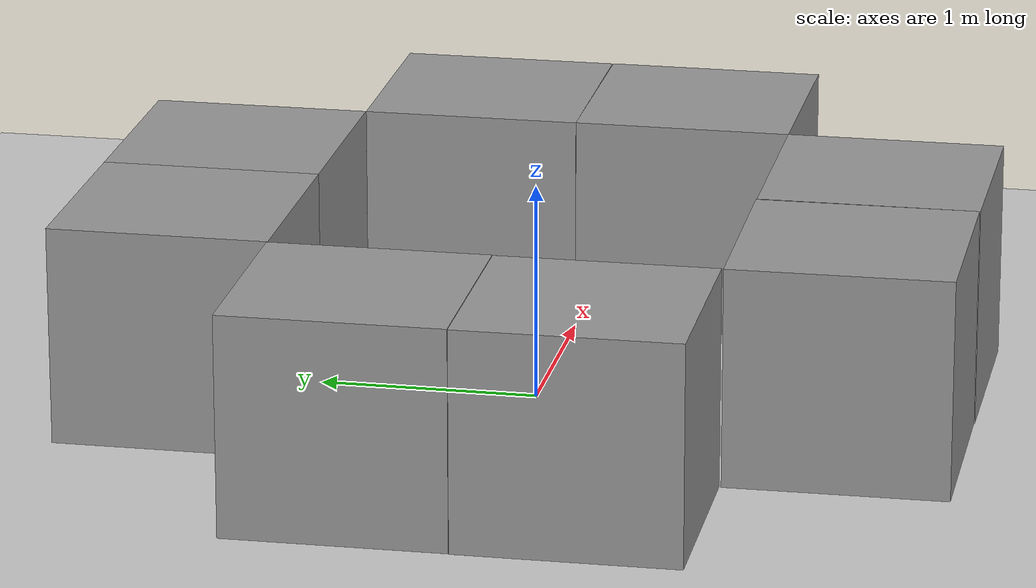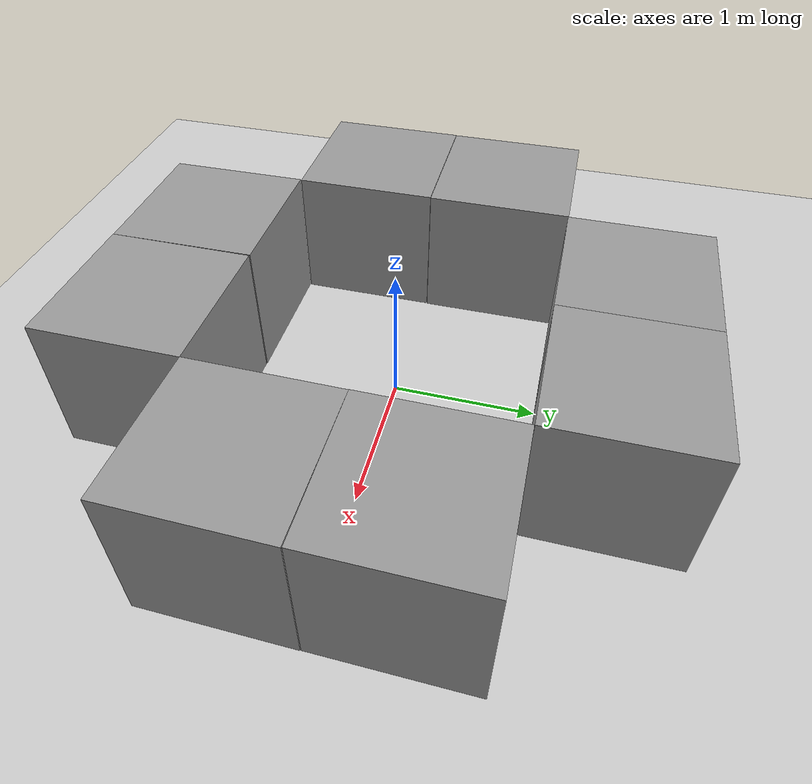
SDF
<sdf version="1.6">
 <world name="default">
  <light name="sun" type="directional">
   <pose>0 0 10 0 -0 0</pose>
   <diffuse>0.8 0.8 0.8 1</diffuse>
   <specular>0.2 0.2 0.2 1</specular>
   <attenuation>
    <range>1000</range>
    <constant>0.9</constant>
    <linear>0.01</linear>
    <quadratic>0.001</quadratic>
   </attenuation>
   <direction>-0.5 0.1 -0.9</direction>
  </light>
  <model name="ground_plane">
   <static>1</static>
   <link name="link">
    <collision name="collision">
     <geometry><plane><normal>0 0 1</normal><size>100 100</size></plane></geometry>
     <surface>
      <contact><collide_bitmask>65535</collide_bitmask></contact>
      <friction><ode><mu>100</mu><mu2>50</mu2></ode></friction>
     </surface>
    </collision>
    <visual name="visual">
     <cast_shadows>0</cast_shadows>
     <geometry><plane><normal>0 0 1</normal><size>100 100</size></plane></geometry>
     <material>
      <script><uri>file://media/materials/scripts/gazebo.material</uri><name>Gazebo/Grey</name></script>
     </material>
    </visual>
   </link>
  </model>
  <gravity>0 0 -9.8</gravity>
  <magnetic_field>6e-06 2.3e-05 -4.2e-05</magnetic_field>
  <atmosphere type="adiabatic"/>
  <physics name="default_physics" default="0" type="ode">
   <max_step_size>0.001</max_step_size>
   <real_time_factor>1</real_time_factor>
   <real_time_update_rate>1000</real_time_update_rate>
  </physics>
  <scene><ambient>0.4 0.4 0.4 1</ambient><background>0.7 0.7 0.7 1</background><shadows>1</shadows></scene>
  <audio><device>default</device></audio>
  <spherical_coordinates>
   <surface_model>EARTH_WGS84</surface_model>
   <latitude_deg>0</latitude_deg>
   <longitude_deg>0</longitude_deg>
   <elevation>0</elevation>
   <heading_deg>0</heading_deg>
  </spherical_coordinates>
  <model name="unit_box">
   <pose>-0.498776 1.50256 0.499995 1e-05 -0 -0.000189</pose>
   <link name="link">
    <inertial>
     <mass>1</mass>
     <inertia>
      <ixx>0.166667</ixx>
      <ixy>0</ixy>
      <ixz>0</ixz>
      <iyy>0.166667</iyy>
      <iyz>0</iyz>
      <izz>0.166667</izz>
     </inertia>
    </inertial>
    <collision name="collision"><geometry><box><size>1 1 1</size></box></geometry></collision>
    <visual name="visual">
     <geometry><box><size>1 1 1</size></box></geometry>
     <material>
      <script><name>Gazebo/Grey</name><uri>file://media/materials/scripts/gazebo.material</uri></script>
     </material>
    </visual>
   </link>
  </model>
  <model name="unit_box_0">
   <pose>-1.50053 0.505425 0.499995 -0 -1e-05 0.00335</pose>
   <link name="link">
    <inertial>
     <mass>1</mass>
     <inertia>
      <ixx>0.166667</ixx>
      <ixy>0</ixy>
      <ixz>0</ixz>
      <iyy>0.166667</iyy>
      <iyz>0</iyz>
      <izz>0.166667</izz>
     </inertia>
    </inertial>
    <collision name="collision"><geometry><box><size>1 1 1</size></box></geometry></collision>
    <visual name="visual">
     <geometry><box><size>1 1 1</size></box></geometry>
     <material>
      <script><name>Gazebo/Grey</name><uri>file://media/materials/scripts/gazebo.material</uri></script>
     </material>
    </visual>
   </link>
  </model>
  <model name="unit_box_1">
   <pose>-1.50158 -0.497352 0.499995 0 1e-05 0.003059</pose>
   <link name="link">
    <inertial>
     <mass>1</mass>
     <inertia>
      <ixx>0.166667</ixx>
      <ixy>0</ixy>
      <ixz>0</ixz>
      <iyy>0.166667</iyy>
      <iyz>0</iyz>
      <izz>0.166667</izz>
     </inertia>
    </inertial>
    <collision name="collision"><geometry><box><size>1 1 1</size></box></geometry></collision>
    <visual name="visual">
     <geometry><box><size>1 1 1</size></box></geometry>
     <material>
      <script><name>Gazebo/Grey</name><uri>file://media/materials/scripts/gazebo.material</uri></script>
     </material>
    </visual>
   </link>
  </model>
  <model name="unit_box_2">
   <pose>-0.503093 -1.50021 0.499995 1e-05 0 0.007055</pose>
   <link name="link">
    <inertial>
     <mass>1</mass>
     <inertia>
      <ixx>0.166667</ixx>
      <ixy>0</ixy>
      <ixz>0</ixz>
      <iyy>0.166667</iyy>
      <iyz>0</iyz>
      <izz>0.166667</izz>
     </inertia>
    </inertial>
    <collision name="collision"><geometry><box><size>1 1 1</size></box></geometry></collision>
    <visual name="visual">
     <geometry><box><size>1 1 1</size></box></geometry>
     <material>
      <script><name>Gazebo/Grey</name><uri>file://media/materials/scripts/gazebo.material</uri></script>
     </material>
    </visual>
   </link>
  </model>
  <model name="unit_box_3">
   <pose>0.500186 -1.5 0.499995 1e-05 -0 0.000508</pose>
   <link name="link">
    <inertial>
     <mass>1</mass>
     <inertia>
      <ixx>0.166667</ixx>
      <ixy>0</ixy>
      <ixz>0</ixz>
      <iyy>0.166667</iyy>
      <iyz>0</iyz>
      <izz>0.166667</izz>
     </inertia>
    </inertial>
    <collision name="collision"><geometry><box><size>1 1 1</size></box></geometry></collision>
    <visual name="visual">
     <geometry><box><size>1 1 1</size></box></geometry>
     <material>
      <script><name>Gazebo/Grey</name><uri>file://media/materials/scripts/gazebo.material</uri></script>
     </material>
    </visual>
   </link>
  </model>
  <model name="unit_box_4">
   <pose>1.49995 -0.50191 0.499995 -0 1e-05 -0.004579</pose>
   <link name="link">
    <inertial>
     <mass>1</mass>
     <inertia>
      <ixx>0.166667</ixx>
      <ixy>0</ixy>
      <ixz>0</ixz>
      <iyy>0.166667</iyy>
      <iyz>0</iyz>
      <izz>0.166667</izz>
     </inertia>
    </inertial>
    <collision name="collision"><geometry><box><size>1 1 1</size></box></geometry></collision>
    <visual name="visual">
     <geometry><box><size>1 1 1</size></box></geometry>
     <material>
      <script><name>Gazebo/Grey</name><uri>file://media/materials/scripts/gazebo.material</uri></script>
     </material>
    </visual>
   </link>
  </model>
  <model name="unit_box_5">
   <pose>1.49998 0.500151 0.5 0 0 -0.000449</pose>
   <link name="link">
    <inertial>
     <mass>1</mass>
     <inertia>
      <ixx>0.166667</ixx>
      <ixy>0</ixy>
      <ixz>0</ixz>
      <iyy>0.166667</iyy>
      <iyz>0</iyz>
      <izz>0.166667</izz>
     </inertia>
    </inertial>
    <collision name="collision"><geometry><box><size>1 1 1</size></box></geometry></collision>
    <visual name="visual">
     <geometry><box><size>1 1 1</size></box></geometry>
     <material>
      <script><name>Gazebo/Grey</name><uri>file://media/materials/scripts/gazebo.material</uri></script>
     </material>
    </visual>
   </link>
  </model>
  <model name="unit_box_6">
   <pose>0.501229 1.5025 0.499995 1e-05 -0 -0.000189</pose>
   <link name="link">
    <inertial>
     <mass>1</mass>
     <inertia>
      <ixx>0.166667</ixx>
      <ixy>0</ixy>
      <ixz>0</ixz>
      <iyy>0.166667</iyy>
      <iyz>0</iyz>
      <izz>0.166667</izz>
     </inertia>
    </inertial>
    <collision name="collision"><geometry><box><size>1 1 1</size></box></geometry></collision>
    <visual name="visual">
     <geometry><box><size>1 1 1</size></box></geometry>
     <material>
      <script><name>Gazebo/Grey</name><uri>file://media/materials/scripts/gazebo.material</uri></script>
     </material>
    </visual>
   </link>
  </model>
 </world>
</sdf>
